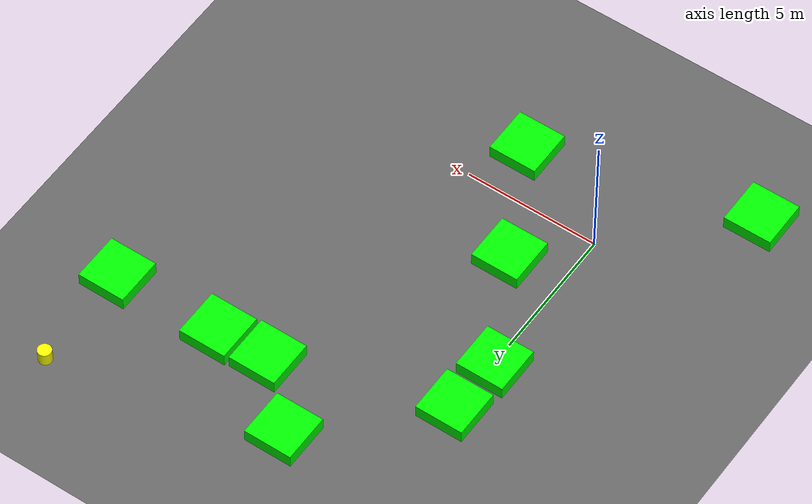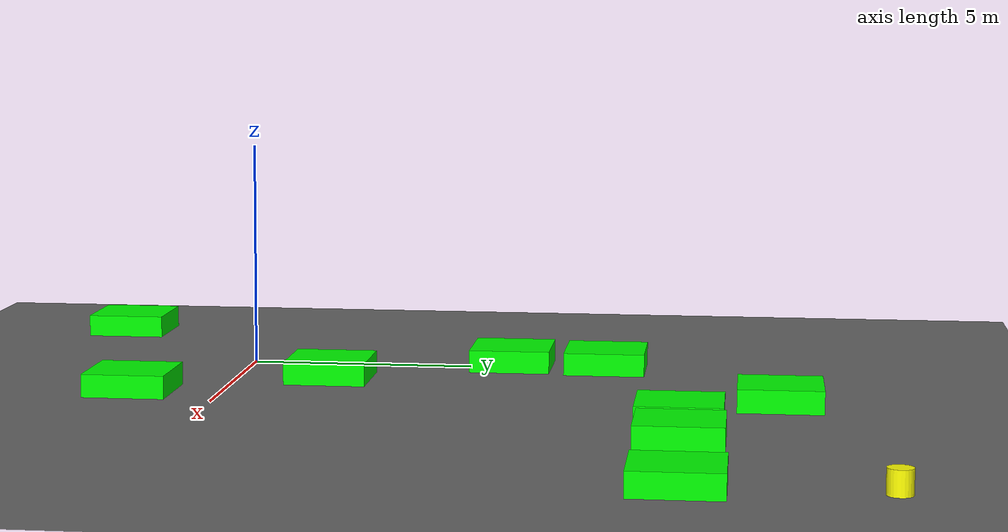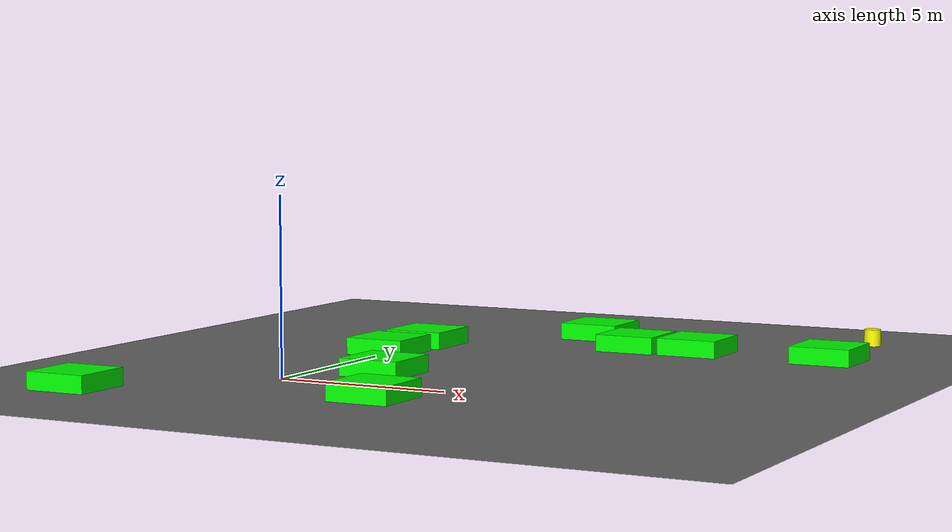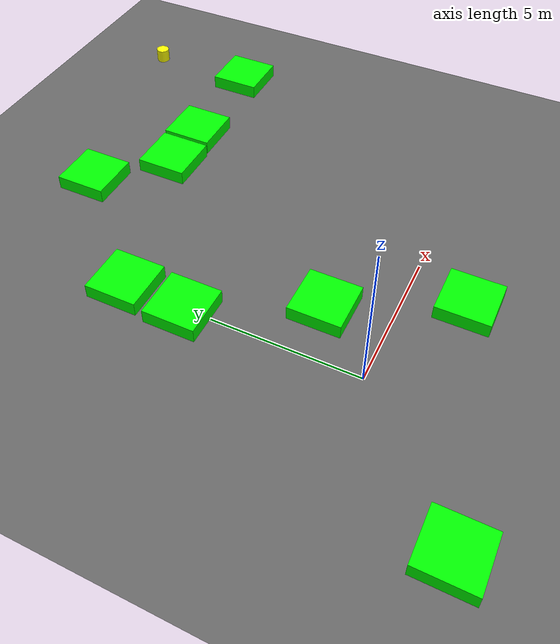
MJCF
<mujoco model="lvl4_standard_obs9_d3long_seed1151">
    <compiler angle="degree" coordinate="local" inertiafromgeom="true"/>
    <option integrator="RK4" timestep="0.01"/>

    <asset>
        <texture builtin="gradient" height="100" rgb1="0.6 0.8 1" rgb2="0 0 0" type="skybox" width="100"/>
        <texture name="floor_texture" type="2d" builtin="checker" width="100" height="100" rgb1="0 0 0" rgb2="0.8 0.8 0.8"/>
        <material name="MatPlane" reflectance="0.5" shininess="1" specular="1" texrepeat="10 10" texture="floor_texture"/>
    </asset>

    <!-- Excluding the contact between the agent and the goal, and the agent and the floor -->
    <contact>
        <exclude body1="agent" body2="goal"/>
        <exclude body1 = "agent" body2 = "floor"/>
    </contact>

    <extension>
        <plugin plugin = "mujoco.pid">
            <instance name = "pid1">
                <config key="kp" value="2"/>
                <config key="ki" value="0"/>
                <config key="kd" value="55"/>
            </instance>
        </plugin>
    </extension>

    <worldbody>
        <light cutoff="100" diffuse="1 1 1" dir="-0 0 -1.3" directional="true" exponent="1" pos="0 0 1.3" specular=".1 .1 .1"/>
        <body name="floor" pos="0 0 0">
            <geom name="floor_geom" type="plane" size="20 20 0.1" material="MatPlane"/>
        </body>

                <body name="goal" pos="0.0000 0.0000 0">
            <geom name="goal_geom" type="plane" size="0.5 0.5 1" pos="0 0 0" rgba="1 0 0 1"/>
        </body>

                <body name="agent" pos="12.0000 14.0000 0.250">
            <joint name="j1" type="slide" axis ="1 0 0 "/>
            <joint name="j2" type="slide" axis ="0 1 0 "/>
            <geom name="agent_geom" type="cylinder" size="0.25 0.25 0.250" rgba="1 1 0 1"/>
        </body>

        <body name="obstacle1" pos="3.9542 11.9728 0.250">  <geom name="obstacle1_geom" type="box" size="0.9000 0.9000 0.250" rgba="0 1 0 1"/></body>
        <body name="obstacle2" pos="6.0570 9.9355 0.250">  <geom name="obstacle2_geom" type="box" size="0.9000 0.9000 0.250" rgba="0 1 0 1"/></body>
        <body name="obstacle3" pos="8.0008 9.9949 0.250">  <geom name="obstacle3_geom" type="box" size="0.9000 0.9000 0.250" rgba="0 1 0 1"/></body>
        <body name="obstacle4" pos="12.0231 10.0720 0.250">  <geom name="obstacle4_geom" type="box" size="0.9000 0.9000 0.250" rgba="0 1 0 1"/></body>
        <body name="obstacle5" pos="0.0222 8.0807 0.250">  <geom name="obstacle5_geom" type="box" size="0.9000 0.9000 0.250" rgba="0 1 0 1"/></body>
        <body name="obstacle6" pos="-0.0842 5.9416 0.250">  <geom name="obstacle6_geom" type="box" size="0.9000 0.9000 0.250" rgba="0 1 0 1"/></body>
        <body name="obstacle7" pos="1.9801 2.0732 0.250">  <geom name="obstacle7_geom" type="box" size="0.9000 0.9000 0.250" rgba="0 1 0 1"/></body>
        <body name="obstacle8" pos="3.9931 -1.9287 0.250">  <geom name="obstacle8_geom" type="box" size="0.9000 0.9000 0.250" rgba="0 1 0 1"/></body>
        <body name="obstacle9" pos="-3.9853 -3.9103 0.250">  <geom name="obstacle9_geom" type="box" size="0.9000 0.9000 0.250" rgba="0 1 0 1"/></body>

    </worldbody>

    <sensor>
<!-- SENSORS -->

        <distance name="dist1" geom1="agent_geom" geom2="obstacle1_geom" cutoff="1.5"/>
        <distance name="dist2" geom1="agent_geom" geom2="obstacle2_geom" cutoff="1.5"/>
        <distance name="dist3" geom1="agent_geom" geom2="obstacle3_geom" cutoff="1.5"/>
        <distance name="dist4" geom1="agent_geom" geom2="obstacle4_geom" cutoff="1.5"/>
        <distance name="dist5" geom1="agent_geom" geom2="obstacle5_geom" cutoff="1.5"/>
        <distance name="dist6" geom1="agent_geom" geom2="obstacle6_geom" cutoff="1.5"/>
        <distance name="dist7" geom1="agent_geom" geom2="obstacle7_geom" cutoff="1.5"/>
        <distance name="dist8" geom1="agent_geom" geom2="obstacle8_geom" cutoff="1.5"/>
        <distance name="dist9" geom1="agent_geom" geom2="obstacle9_geom" cutoff="1.5"/>
</sensor>

    <actuator>
        <plugin joint="j1" plugin="mujoco.pid" instance="pid1" />
        <plugin joint="j2" plugin="mujoco.pid" instance="pid1"/>
    </actuator>
</mujoco>
